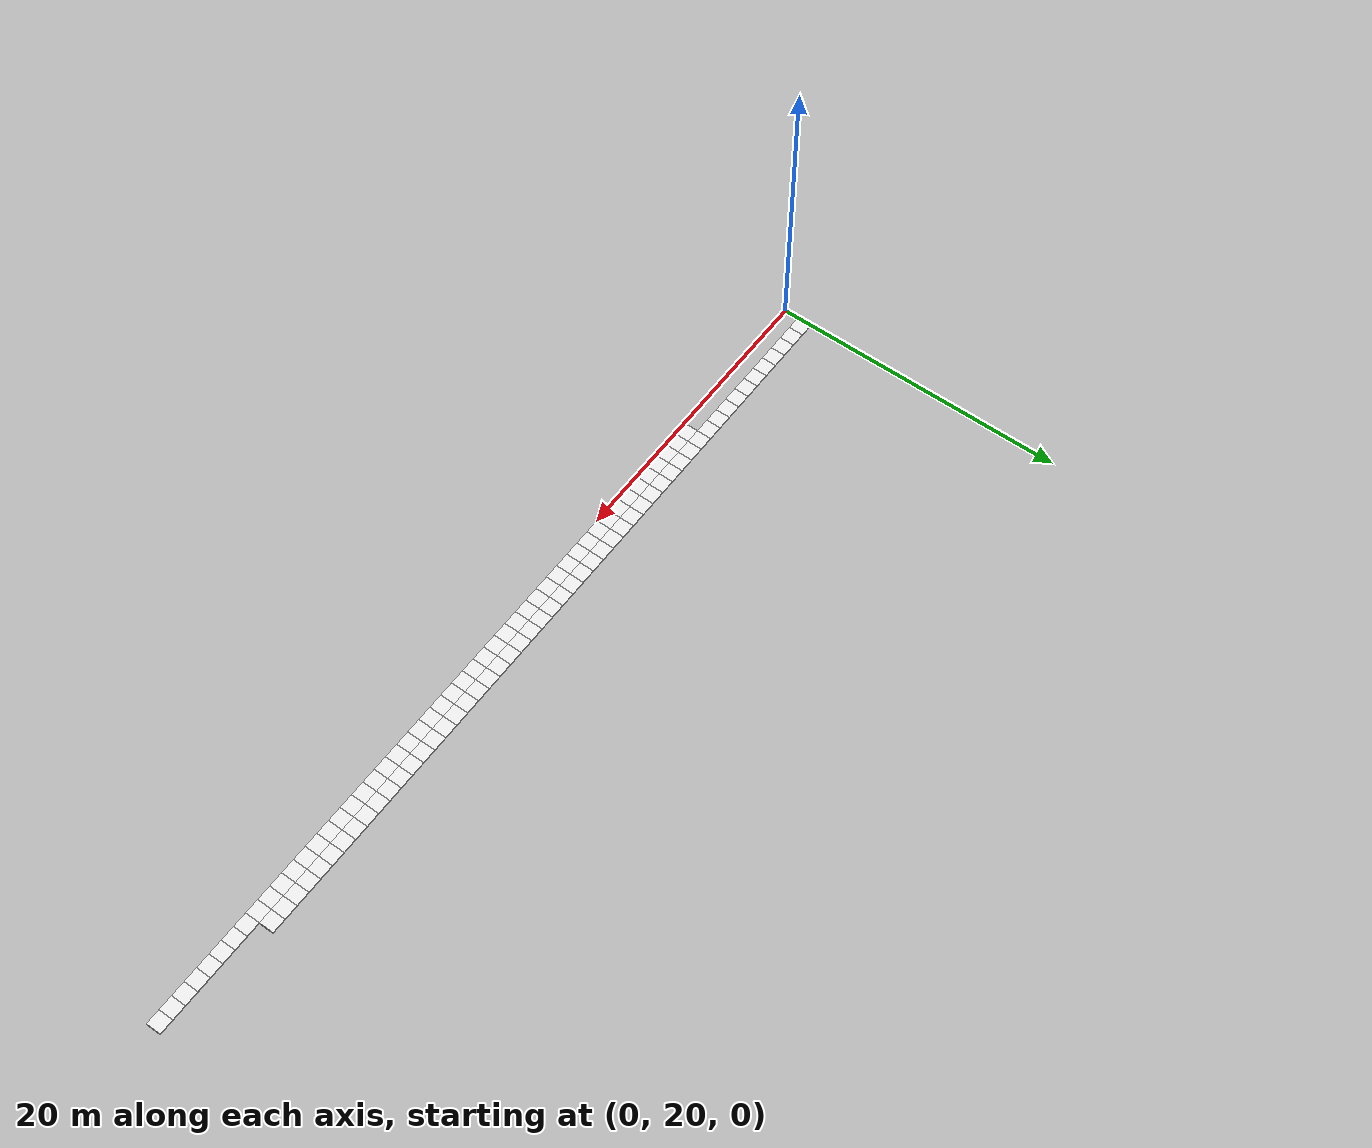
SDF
<sdf version="1.6">
 <world name="grid_world">
  <model name="cell_11_20">
   <static>true</static>
   <link name="link">
    <collision name="collision"><geometry><box><size>1 1 0.1</size></box></geometry></collision>
    <visual name="visual">
     <geometry><box><size>1 1 0.1</size></box></geometry>
     <material>
      <script><uri>file://media/materials/scripts/gazebo.material</uri><name>Gazebo/White</name></script>
     </material>
    </visual>
    <pose>11.5 20.5 0.05 0 0 0</pose>
   </link>
  </model>
  <model name="cell_12_20">
   <static>true</static>
   <link name="link">
    <collision name="collision"><geometry><box><size>1 1 0.1</size></box></geometry></collision>
    <visual name="visual">
     <geometry><box><size>1 1 0.1</size></box></geometry>
     <material>
      <script><uri>file://media/materials/scripts/gazebo.material</uri><name>Gazebo/White</name></script>
     </material>
    </visual>
    <pose>12.5 20.5 0.05 0 0 0</pose>
   </link>
  </model>
  <model name="cell_13_20">
   <static>true</static>
   <link name="link">
    <collision name="collision"><geometry><box><size>1 1 0.1</size></box></geometry></collision>
    <visual name="visual">
     <geometry><box><size>1 1 0.1</size></box></geometry>
     <material>
      <script><uri>file://media/materials/scripts/gazebo.material</uri><name>Gazebo/White</name></script>
     </material>
    </visual>
    <pose>13.5 20.5 0.05 0 0 0</pose>
   </link>
  </model>
  <model name="cell_14_20">
   <static>true</static>
   <link name="link">
    <collision name="collision"><geometry><box><size>1 1 0.1</size></box></geometry></collision>
    <visual name="visual">
     <geometry><box><size>1 1 0.1</size></box></geometry>
     <material>
      <script><uri>file://media/materials/scripts/gazebo.material</uri><name>Gazebo/White</name></script>
     </material>
    </visual>
    <pose>14.5 20.5 0.05 0 0 0</pose>
   </link>
  </model>
  <model name="cell_15_20">
   <static>true</static>
   <link name="link">
    <collision name="collision"><geometry><box><size>1 1 0.1</size></box></geometry></collision>
    <visual name="visual">
     <geometry><box><size>1 1 0.1</size></box></geometry>
     <material>
      <script><uri>file://media/materials/scripts/gazebo.material</uri><name>Gazebo/White</name></script>
     </material>
    </visual>
    <pose>15.5 20.5 0.05 0 0 0</pose>
   </link>
  </model>
  <model name="cell_16_20">
   <static>true</static>
   <link name="link">
    <collision name="collision"><geometry><box><size>1 1 0.1</size></box></geometry></collision>
    <visual name="visual">
     <geometry><box><size>1 1 0.1</size></box></geometry>
     <material>
      <script><uri>file://media/materials/scripts/gazebo.material</uri><name>Gazebo/White</name></script>
     </material>
    </visual>
    <pose>16.5 20.5 0.05 0 0 0</pose>
   </link>
  </model>
  <model name="cell_17_20">
   <static>true</static>
   <link name="link">
    <collision name="collision"><geometry><box><size>1 1 0.1</size></box></geometry></collision>
    <visual name="visual">
     <geometry><box><size>1 1 0.1</size></box></geometry>
     <material>
      <script><uri>file://media/materials/scripts/gazebo.material</uri><name>Gazebo/White</name></script>
     </material>
    </visual>
    <pose>17.5 20.5 0.05 0 0 0</pose>
   </link>
  </model>
  <model name="cell_18_20">
   <static>true</static>
   <link name="link">
    <collision name="collision"><geometry><box><size>1 1 0.1</size></box></geometry></collision>
    <visual name="visual">
     <geometry><box><size>1 1 0.1</size></box></geometry>
     <material>
      <script><uri>file://media/materials/scripts/gazebo.material</uri><name>Gazebo/White</name></script>
     </material>
    </visual>
    <pose>18.5 20.5 0.05 0 0 0</pose>
   </link>
  </model>
  <model name="cell_19_20">
   <static>true</static>
   <link name="link">
    <collision name="collision"><geometry><box><size>1 1 0.1</size></box></geometry></collision>
    <visual name="visual">
     <geometry><box><size>1 1 0.1</size></box></geometry>
     <material>
      <script><uri>file://media/materials/scripts/gazebo.material</uri><name>Gazebo/White</name></script>
     </material>
    </visual>
    <pose>19.5 20.5 0.05 0 0 0</pose>
   </link>
  </model>
  <model name="cell_20_20">
   <static>true</static>
   <link name="link">
    <collision name="collision"><geometry><box><size>1 1 0.1</size></box></geometry></collision>
    <visual name="visual">
     <geometry><box><size>1 1 0.1</size></box></geometry>
     <material>
      <script><uri>file://media/materials/scripts/gazebo.material</uri><name>Gazebo/White</name></script>
     </material>
    </visual>
    <pose>20.5 20.5 0.05 0 0 0</pose>
   </link>
  </model>
  <model name="cell_21_20">
   <static>true</static>
   <link name="link">
    <collision name="collision"><geometry><box><size>1 1 0.1</size></box></geometry></collision>
    <visual name="visual">
     <geometry><box><size>1 1 0.1</size></box></geometry>
     <material>
      <script><uri>file://media/materials/scripts/gazebo.material</uri><name>Gazebo/White</name></script>
     </material>
    </visual>
    <pose>21.5 20.5 0.05 0 0 0</pose>
   </link>
  </model>
  <model name="cell_22_20">
   <static>true</static>
   <link name="link">
    <collision name="collision"><geometry><box><size>1 1 0.1</size></box></geometry></collision>
    <visual name="visual">
     <geometry><box><size>1 1 0.1</size></box></geometry>
     <material>
      <script><uri>file://media/materials/scripts/gazebo.material</uri><name>Gazebo/White</name></script>
     </material>
    </visual>
    <pose>22.5 20.5 0.05 0 0 0</pose>
   </link>
  </model>
  <model name="cell_23_20">
   <static>true</static>
   <link name="link">
    <collision name="collision"><geometry><box><size>1 1 0.1</size></box></geometry></collision>
    <visual name="visual">
     <geometry><box><size>1 1 0.1</size></box></geometry>
     <material>
      <script><uri>file://media/materials/scripts/gazebo.material</uri><name>Gazebo/White</name></script>
     </material>
    </visual>
    <pose>23.5 20.5 0.05 0 0 0</pose>
   </link>
  </model>
  <model name="cell_24_20">
   <static>true</static>
   <link name="link">
    <collision name="collision"><geometry><box><size>1 1 0.1</size></box></geometry></collision>
    <visual name="visual">
     <geometry><box><size>1 1 0.1</size></box></geometry>
     <material>
      <script><uri>file://media/materials/scripts/gazebo.material</uri><name>Gazebo/White</name></script>
     </material>
    </visual>
    <pose>24.5 20.5 0.05 0 0 0</pose>
   </link>
  </model>
  <model name="cell_25_20">
   <static>true</static>
   <link name="link">
    <collision name="collision"><geometry><box><size>1 1 0.1</size></box></geometry></collision>
    <visual name="visual">
     <geometry><box><size>1 1 0.1</size></box></geometry>
     <material>
      <script><uri>file://media/materials/scripts/gazebo.material</uri><name>Gazebo/White</name></script>
     </material>
    </visual>
    <pose>25.5 20.5 0.05 0 0 0</pose>
   </link>
  </model>
  <model name="cell_26_20">
   <static>true</static>
   <link name="link">
    <collision name="collision"><geometry><box><size>1 1 0.1</size></box></geometry></collision>
    <visual name="visual">
     <geometry><box><size>1 1 0.1</size></box></geometry>
     <material>
      <script><uri>file://media/materials/scripts/gazebo.material</uri><name>Gazebo/White</name></script>
     </material>
    </visual>
    <pose>26.5 20.5 0.05 0 0 0</pose>
   </link>
  </model>
  <model name="cell_27_20">
   <static>true</static>
   <link name="link">
    <collision name="collision"><geometry><box><size>1 1 0.1</size></box></geometry></collision>
    <visual name="visual">
     <geometry><box><size>1 1 0.1</size></box></geometry>
     <material>
      <script><uri>file://media/materials/scripts/gazebo.material</uri><name>Gazebo/White</name></script>
     </material>
    </visual>
    <pose>27.5 20.5 0.05 0 0 0</pose>
   </link>
  </model>
  <model name="cell_28_20">
   <static>true</static>
   <link name="link">
    <collision name="collision"><geometry><box><size>1 1 0.1</size></box></geometry></collision>
    <visual name="visual">
     <geometry><box><size>1 1 0.1</size></box></geometry>
     <material>
      <script><uri>file://media/materials/scripts/gazebo.material</uri><name>Gazebo/White</name></script>
     </material>
    </visual>
    <pose>28.5 20.5 0.05 0 0 0</pose>
   </link>
  </model>
  <model name="cell_29_20">
   <static>true</static>
   <link name="link">
    <collision name="collision"><geometry><box><size>1 1 0.1</size></box></geometry></collision>
    <visual name="visual">
     <geometry><box><size>1 1 0.1</size></box></geometry>
     <material>
      <script><uri>file://media/materials/scripts/gazebo.material</uri><name>Gazebo/White</name></script>
     </material>
    </visual>
    <pose>29.5 20.5 0.05 0 0 0</pose>
   </link>
  </model>
  <model name="cell_30_20">
   <static>true</static>
   <link name="link">
    <collision name="collision"><geometry><box><size>1 1 0.1</size></box></geometry></collision>
    <visual name="visual">
     <geometry><box><size>1 1 0.1</size></box></geometry>
     <material>
      <script><uri>file://media/materials/scripts/gazebo.material</uri><name>Gazebo/White</name></script>
     </material>
    </visual>
    <pose>30.5 20.5 0.05 0 0 0</pose>
   </link>
  </model>
  <model name="cell_31_20">
   <static>true</static>
   <link name="link">
    <collision name="collision"><geometry><box><size>1 1 0.1</size></box></geometry></collision>
    <visual name="visual">
     <geometry><box><size>1 1 0.1</size></box></geometry>
     <material>
      <script><uri>file://media/materials/scripts/gazebo.material</uri><name>Gazebo/White</name></script>
     </material>
    </visual>
    <pose>31.5 20.5 0.05 0 0 0</pose>
   </link>
  </model>
  <model name="cell_32_20">
   <static>true</static>
   <link name="link">
    <collision name="collision"><geometry><box><size>1 1 0.1</size></box></geometry></collision>
    <visual name="visual">
     <geometry><box><size>1 1 0.1</size></box></geometry>
     <material>
      <script><uri>file://media/materials/scripts/gazebo.material</uri><name>Gazebo/White</name></script>
     </material>
    </visual>
    <pose>32.5 20.5 0.05 0 0 0</pose>
   </link>
  </model>
  <model name="cell_33_20">
   <static>true</static>
   <link name="link">
    <collision name="collision"><geometry><box><size>1 1 0.1</size></box></geometry></collision>
    <visual name="visual">
     <geometry><box><size>1 1 0.1</size></box></geometry>
     <material>
      <script><uri>file://media/materials/scripts/gazebo.material</uri><name>Gazebo/White</name></script>
     </material>
    </visual>
    <pose>33.5 20.5 0.05 0 0 0</pose>
   </link>
  </model>
  <model name="cell_34_20">
   <static>true</static>
   <link name="link">
    <collision name="collision"><geometry><box><size>1 1 0.1</size></box></geometry></collision>
    <visual name="visual">
     <geometry><box><size>1 1 0.1</size></box></geometry>
     <material>
      <script><uri>file://media/materials/scripts/gazebo.material</uri><name>Gazebo/White</name></script>
     </material>
    </visual>
    <pose>34.5 20.5 0.05 0 0 0</pose>
   </link>
  </model>
  <model name="cell_35_20">
   <static>true</static>
   <link name="link">
    <collision name="collision"><geometry><box><size>1 1 0.1</size></box></geometry></collision>
    <visual name="visual">
     <geometry><box><size>1 1 0.1</size></box></geometry>
     <material>
      <script><uri>file://media/materials/scripts/gazebo.material</uri><name>Gazebo/White</name></script>
     </material>
    </visual>
    <pose>35.5 20.5 0.05 0 0 0</pose>
   </link>
  </model>
  <model name="cell_36_20">
   <static>true</static>
   <link name="link">
    <collision name="collision"><geometry><box><size>1 1 0.1</size></box></geometry></collision>
    <visual name="visual">
     <geometry><box><size>1 1 0.1</size></box></geometry>
     <material>
      <script><uri>file://media/materials/scripts/gazebo.material</uri><name>Gazebo/White</name></script>
     </material>
    </visual>
    <pose>36.5 20.5 0.05 0 0 0</pose>
   </link>
  </model>
  <model name="cell_37_20">
   <static>true</static>
   <link name="link">
    <collision name="collision"><geometry><box><size>1 1 0.1</size></box></geometry></collision>
    <visual name="visual">
     <geometry><box><size>1 1 0.1</size></box></geometry>
     <material>
      <script><uri>file://media/materials/scripts/gazebo.material</uri><name>Gazebo/White</name></script>
     </material>
    </visual>
    <pose>37.5 20.5 0.05 0 0 0</pose>
   </link>
  </model>
  <model name="cell_38_20">
   <static>true</static>
   <link name="link">
    <collision name="collision"><geometry><box><size>1 1 0.1</size></box></geometry></collision>
    <visual name="visual">
     <geometry><box><size>1 1 0.1</size></box></geometry>
     <material>
      <script><uri>file://media/materials/scripts/gazebo.material</uri><name>Gazebo/White</name></script>
     </material>
    </visual>
    <pose>38.5 20.5 0.05 0 0 0</pose>
   </link>
  </model>
  <model name="cell_39_20">
   <static>true</static>
   <link name="link">
    <collision name="collision"><geometry><box><size>1 1 0.1</size></box></geometry></collision>
    <visual name="visual">
     <geometry><box><size>1 1 0.1</size></box></geometry>
     <material>
      <script><uri>file://media/materials/scripts/gazebo.material</uri><name>Gazebo/White</name></script>
     </material>
    </visual>
    <pose>39.5 20.5 0.05 0 0 0</pose>
   </link>
  </model>
  <model name="cell_40_20">
   <static>true</static>
   <link name="link">
    <collision name="collision"><geometry><box><size>1 1 0.1</size></box></geometry></collision>
    <visual name="visual">
     <geometry><box><size>1 1 0.1</size></box></geometry>
     <material>
      <script><uri>file://media/materials/scripts/gazebo.material</uri><name>Gazebo/White</name></script>
     </material>
    </visual>
    <pose>40.5 20.5 0.05 0 0 0</pose>
   </link>
  </model>
  <model name="cell_41_20">
   <static>true</static>
   <link name="link">
    <collision name="collision"><geometry><box><size>1 1 0.1</size></box></geometry></collision>
    <visual name="visual">
     <geometry><box><size>1 1 0.1</size></box></geometry>
     <material>
      <script><uri>file://media/materials/scripts/gazebo.material</uri><name>Gazebo/White</name></script>
     </material>
    </visual>
    <pose>41.5 20.5 0.05 0 0 0</pose>
   </link>
  </model>
  <model name="cell_42_20">
   <static>true</static>
   <link name="link">
    <collision name="collision"><geometry><box><size>1 1 0.1</size></box></geometry></collision>
    <visual name="visual">
     <geometry><box><size>1 1 0.1</size></box></geometry>
     <material>
      <script><uri>file://media/materials/scripts/gazebo.material</uri><name>Gazebo/White</name></script>
     </material>
    </visual>
    <pose>42.5 20.5 0.05 0 0 0</pose>
   </link>
  </model>
  <model name="cell_43_20">
   <static>true</static>
   <link name="link">
    <collision name="collision"><geometry><box><size>1 1 0.1</size></box></geometry></collision>
    <visual name="visual">
     <geometry><box><size>1 1 0.1</size></box></geometry>
     <material>
      <script><uri>file://media/materials/scripts/gazebo.material</uri><name>Gazebo/White</name></script>
     </material>
    </visual>
    <pose>43.5 20.5 0.05 0 0 0</pose>
   </link>
  </model>
  <model name="cell_44_20">
   <static>true</static>
   <link name="link">
    <collision name="collision"><geometry><box><size>1 1 0.1</size></box></geometry></collision>
    <visual name="visual">
     <geometry><box><size>1 1 0.1</size></box></geometry>
     <material>
      <script><uri>file://media/materials/scripts/gazebo.material</uri><name>Gazebo/White</name></script>
     </material>
    </visual>
    <pose>44.5 20.5 0.05 0 0 0</pose>
   </link>
  </model>
  <model name="cell_45_20">
   <static>true</static>
   <link name="link">
    <collision name="collision"><geometry><box><size>1 1 0.1</size></box></geometry></collision>
    <visual name="visual">
     <geometry><box><size>1 1 0.1</size></box></geometry>
     <material>
      <script><uri>file://media/materials/scripts/gazebo.material</uri><name>Gazebo/White</name></script>
     </material>
    </visual>
    <pose>45.5 20.5 0.05 0 0 0</pose>
   </link>
  </model>
  <model name="cell_46_20">
   <static>true</static>
   <link name="link">
    <collision name="collision"><geometry><box><size>1 1 0.1</size></box></geometry></collision>
    <visual name="visual">
     <geometry><box><size>1 1 0.1</size></box></geometry>
     <material>
      <script><uri>file://media/materials/scripts/gazebo.material</uri><name>Gazebo/White</name></script>
     </material>
    </visual>
    <pose>46.5 20.5 0.05 0 0 0</pose>
   </link>
  </model>
  <model name="cell_47_20">
   <static>true</static>
   <link name="link">
    <collision name="collision"><geometry><box><size>1 1 0.1</size></box></geometry></collision>
    <visual name="visual">
     <geometry><box><size>1 1 0.1</size></box></geometry>
     <material>
      <script><uri>file://media/materials/scripts/gazebo.material</uri><name>Gazebo/White</name></script>
     </material>
    </visual>
    <pose>47.5 20.5 0.05 0 0 0</pose>
   </link>
  </model>
  <model name="cell_48_20">
   <static>true</static>
   <link name="link">
    <collision name="collision"><geometry><box><size>1 1 0.1</size></box></geometry></collision>
    <visual name="visual">
     <geometry><box><size>1 1 0.1</size></box></geometry>
     <material>
      <script><uri>file://media/materials/scripts/gazebo.material</uri><name>Gazebo/White</name></script>
     </material>
    </visual>
    <pose>48.5 20.5 0.05 0 0 0</pose>
   </link>
  </model>
  <model name="cell_49_20">
   <static>true</static>
   <link name="link">
    <collision name="collision"><geometry><box><size>1 1 0.1</size></box></geometry></collision>
    <visual name="visual">
     <geometry><box><size>1 1 0.1</size></box></geometry>
     <material>
      <script><uri>file://media/materials/scripts/gazebo.material</uri><name>Gazebo/White</name></script>
     </material>
    </visual>
    <pose>49.5 20.5 0.05 0 0 0</pose>
   </link>
  </model>
  <model name="cell_50_20">
   <static>true</static>
   <link name="link">
    <collision name="collision"><geometry><box><size>1 1 0.1</size></box></geometry></collision>
    <visual name="visual">
     <geometry><box><size>1 1 0.1</size></box></geometry>
     <material>
      <script><uri>file://media/materials/scripts/gazebo.material</uri><name>Gazebo/White</name></script>
     </material>
    </visual>
    <pose>50.5 20.5 0.05 0 0 0</pose>
   </link>
  </model>
  <model name="cell_51_20">
   <static>true</static>
   <link name="link">
    <collision name="collision"><geometry><box><size>1 1 0.1</size></box></geometry></collision>
    <visual name="visual">
     <geometry><box><size>1 1 0.1</size></box></geometry>
     <material>
      <script><uri>file://media/materials/scripts/gazebo.material</uri><name>Gazebo/White</name></script>
     </material>
    </visual>
    <pose>51.5 20.5 0.05 0 0 0</pose>
   </link>
  </model>
  <model name="cell_52_20">
   <static>true</static>
   <link name="link">
    <collision name="collision"><geometry><box><size>1 1 0.1</size></box></geometry></collision>
    <visual name="visual">
     <geometry><box><size>1 1 0.1</size></box></geometry>
     <material>
      <script><uri>file://media/materials/scripts/gazebo.material</uri><name>Gazebo/White</name></script>
     </material>
    </visual>
    <pose>52.5 20.5 0.05 0 0 0</pose>
   </link>
  </model>
  <model name="cell_53_20">
   <static>true</static>
   <link name="link">
    <collision name="collision"><geometry><box><size>1 1 0.1</size></box></geometry></collision>
    <visual name="visual">
     <geometry><box><size>1 1 0.1</size></box></geometry>
     <material>
      <script><uri>file://media/materials/scripts/gazebo.material</uri><name>Gazebo/White</name></script>
     </material>
    </visual>
    <pose>53.5 20.5 0.05 0 0 0</pose>
   </link>
  </model>
  <model name="cell_54_20">
   <static>true</static>
   <link name="link">
    <collision name="collision"><geometry><box><size>1 1 0.1</size></box></geometry></collision>
    <visual name="visual">
     <geometry><box><size>1 1 0.1</size></box></geometry>
     <material>
      <script><uri>file://media/materials/scripts/gazebo.material</uri><name>Gazebo/White</name></script>
     </material>
    </visual>
    <pose>54.5 20.5 0.05 0 0 0</pose>
   </link>
  </model>
  <model name="cell_55_20">
   <static>true</static>
   <link name="link">
    <collision name="collision"><geometry><box><size>1 1 0.1</size></box></geometry></collision>
    <visual name="visual">
     <geometry><box><size>1 1 0.1</size></box></geometry>
     <material>
      <script><uri>file://media/materials/scripts/gazebo.material</uri><name>Gazebo/White</name></script>
     </material>
    </visual>
    <pose>55.5 20.5 0.05 0 0 0</pose>
   </link>
  </model>
  <model name="cell_56_20">
   <static>true</static>
   <link name="link">
    <collision name="collision"><geometry><box><size>1 1 0.1</size></box></geometry></collision>
    <visual name="visual">
     <geometry><box><size>1 1 0.1</size></box></geometry>
     <material>
      <script><uri>file://media/materials/scripts/gazebo.material</uri><name>Gazebo/White</name></script>
     </material>
    </visual>
    <pose>56.5 20.5 0.05 0 0 0</pose>
   </link>
  </model>
  <model name="cell_57_20">
   <static>true</static>
   <link name="link">
    <collision name="collision"><geometry><box><size>1 1 0.1</size></box></geometry></collision>
    <visual name="visual">
     <geometry><box><size>1 1 0.1</size></box></geometry>
     <material>
      <script><uri>file://media/materials/scripts/gazebo.material</uri><name>Gazebo/White</name></script>
     </material>
    </visual>
    <pose>57.5 20.5 0.05 0 0 0</pose>
   </link>
  </model>
  <model name="cell_58_20">
   <static>true</static>
   <link name="link">
    <collision name="collision"><geometry><box><size>1 1 0.1</size></box></geometry></collision>
    <visual name="visual">
     <geometry><box><size>1 1 0.1</size></box></geometry>
     <material>
      <script><uri>file://media/materials/scripts/gazebo.material</uri><name>Gazebo/White</name></script>
     </material>
    </visual>
    <pose>58.5 20.5 0.05 0 0 0</pose>
   </link>
  </model>
  <model name="cell_59_20">
   <static>true</static>
   <link name="link">
    <collision name="collision"><geometry><box><size>1 1 0.1</size></box></geometry></collision>
    <visual name="visual">
     <geometry><box><size>1 1 0.1</size></box></geometry>
     <material>
      <script><uri>file://media/materials/scripts/gazebo.material</uri><name>Gazebo/White</name></script>
     </material>
    </visual>
    <pose>59.5 20.5 0.05 0 0 0</pose>
   </link>
  </model>
  <model name="cell_0_21">
   <static>true</static>
   <link name="link">
    <collision name="collision"><geometry><box><size>1 1 0.1</size></box></geometry></collision>
    <visual name="visual">
     <geometry><box><size>1 1 0.1</size></box></geometry>
     <material>
      <script><uri>file://media/materials/scripts/gazebo.material</uri><name>Gazebo/White</name></script>
     </material>
    </visual>
    <pose>0.5 21.5 0.05 0 0 0</pose>
   </link>
  </model>
  <model name="cell_1_21">
   <static>true</static>
   <link name="link">
    <collision name="collision"><geometry><box><size>1 1 0.1</size></box></geometry></collision>
    <visual name="visual">
     <geometry><box><size>1 1 0.1</size></box></geometry>
     <material>
      <script><uri>file://media/materials/scripts/gazebo.material</uri><name>Gazebo/White</name></script>
     </material>
    </visual>
    <pose>1.5 21.5 0.05 0 0 0</pose>
   </link>
  </model>
  <model name="cell_2_21">
   <static>true</static>
   <link name="link">
    <collision name="collision"><geometry><box><size>1 1 0.1</size></box></geometry></collision>
    <visual name="visual">
     <geometry><box><size>1 1 0.1</size></box></geometry>
     <material>
      <script><uri>file://media/materials/scripts/gazebo.material</uri><name>Gazebo/White</name></script>
     </material>
    </visual>
    <pose>2.5 21.5 0.05 0 0 0</pose>
   </link>
  </model>
  <model name="cell_3_21">
   <static>true</static>
   <link name="link">
    <collision name="collision"><geometry><box><size>1 1 0.1</size></box></geometry></collision>
    <visual name="visual">
     <geometry><box><size>1 1 0.1</size></box></geometry>
     <material>
      <script><uri>file://media/materials/scripts/gazebo.material</uri><name>Gazebo/White</name></script>
     </material>
    </visual>
    <pose>3.5 21.5 0.05 0 0 0</pose>
   </link>
  </model>
  <model name="cell_4_21">
   <static>true</static>
   <link name="link">
    <collision name="collision"><geometry><box><size>1 1 0.1</size></box></geometry></collision>
    <visual name="visual">
     <geometry><box><size>1 1 0.1</size></box></geometry>
     <material>
      <script><uri>file://media/materials/scripts/gazebo.material</uri><name>Gazebo/White</name></script>
     </material>
    </visual>
    <pose>4.5 21.5 0.05 0 0 0</pose>
   </link>
  </model>
  <model name="cell_5_21">
   <static>true</static>
   <link name="link">
    <collision name="collision"><geometry><box><size>1 1 0.1</size></box></geometry></collision>
    <visual name="visual">
     <geometry><box><size>1 1 0.1</size></box></geometry>
     <material>
      <script><uri>file://media/materials/scripts/gazebo.material</uri><name>Gazebo/White</name></script>
     </material>
    </visual>
    <pose>5.5 21.5 0.05 0 0 0</pose>
   </link>
  </model>
  <model name="cell_6_21">
   <static>true</static>
   <link name="link">
    <collision name="collision"><geometry><box><size>1 1 0.1</size></box></geometry></collision>
    <visual name="visual">
     <geometry><box><size>1 1 0.1</size></box></geometry>
     <material>
      <script><uri>file://media/materials/scripts/gazebo.material</uri><name>Gazebo/White</name></script>
     </material>
    </visual>
    <pose>6.5 21.5 0.05 0 0 0</pose>
   </link>
  </model>
  <model name="cell_7_21">
   <static>true</static>
   <link name="link">
    <collision name="collision"><geometry><box><size>1 1 0.1</size></box></geometry></collision>
    <visual name="visual">
     <geometry><box><size>1 1 0.1</size></box></geometry>
     <material>
      <script><uri>file://media/materials/scripts/gazebo.material</uri><name>Gazebo/White</name></script>
     </material>
    </visual>
    <pose>7.5 21.5 0.05 0 0 0</pose>
   </link>
  </model>
  <model name="cell_8_21">
   <static>true</static>
   <link name="link">
    <collision name="collision"><geometry><box><size>1 1 0.1</size></box></geometry></collision>
    <visual name="visual">
     <geometry><box><size>1 1 0.1</size></box></geometry>
     <material>
      <script><uri>file://media/materials/scripts/gazebo.material</uri><name>Gazebo/White</name></script>
     </material>
    </visual>
    <pose>8.5 21.5 0.05 0 0 0</pose>
   </link>
  </model>
  <model name="cell_9_21">
   <static>true</static>
   <link name="link">
    <collision name="collision"><geometry><box><size>1 1 0.1</size></box></geometry></collision>
    <visual name="visual">
     <geometry><box><size>1 1 0.1</size></box></geometry>
     <material>
      <script><uri>file://media/materials/scripts/gazebo.material</uri><name>Gazebo/White</name></script>
     </material>
    </visual>
    <pose>9.5 21.5 0.05 0 0 0</pose>
   </link>
  </model>
  <model name="cell_10_21">
   <static>true</static>
   <link name="link">
    <collision name="collision"><geometry><box><size>1 1 0.1</size></box></geometry></collision>
    <visual name="visual">
     <geometry><box><size>1 1 0.1</size></box></geometry>
     <material>
      <script><uri>file://media/materials/scripts/gazebo.material</uri><name>Gazebo/White</name></script>
     </material>
    </visual>
    <pose>10.5 21.5 0.05 0 0 0</pose>
   </link>
  </model>
  <model name="cell_11_21">
   <static>true</static>
   <link name="link">
    <collision name="collision"><geometry><box><size>1 1 0.1</size></box></geometry></collision>
    <visual name="visual">
     <geometry><box><size>1 1 0.1</size></box></geometry>
     <material>
      <script><uri>file://media/materials/scripts/gazebo.material</uri><name>Gazebo/White</name></script>
     </material>
    </visual>
    <pose>11.5 21.5 0.05 0 0 0</pose>
   </link>
  </model>
  <model name="cell_12_21">
   <static>true</static>
   <link name="link">
    <collision name="collision"><geometry><box><size>1 1 0.1</size></box></geometry></collision>
    <visual name="visual">
     <geometry><box><size>1 1 0.1</size></box></geometry>
     <material>
      <script><uri>file://media/materials/scripts/gazebo.material</uri><name>Gazebo/White</name></script>
     </material>
    </visual>
    <pose>12.5 21.5 0.05 0 0 0</pose>
   </link>
  </model>
  <model name="cell_13_21">
   <static>true</static>
   <link name="link">
    <collision name="collision"><geometry><box><size>1 1 0.1</size></box></geometry></collision>
    <visual name="visual">
     <geometry><box><size>1 1 0.1</size></box></geometry>
     <material>
      <script><uri>file://media/materials/scripts/gazebo.material</uri><name>Gazebo/White</name></script>
     </material>
    </visual>
    <pose>13.5 21.5 0.05 0 0 0</pose>
   </link>
  </model>
  <model name="cell_14_21">
   <static>true</static>
   <link name="link">
    <collision name="collision"><geometry><box><size>1 1 0.1</size></box></geometry></collision>
    <visual name="visual">
     <geometry><box><size>1 1 0.1</size></box></geometry>
     <material>
      <script><uri>file://media/materials/scripts/gazebo.material</uri><name>Gazebo/White</name></script>
     </material>
    </visual>
    <pose>14.5 21.5 0.05 0 0 0</pose>
   </link>
  </model>
  <model name="cell_15_21">
   <static>true</static>
   <link name="link">
    <collision name="collision"><geometry><box><size>1 1 0.1</size></box></geometry></collision>
    <visual name="visual">
     <geometry><box><size>1 1 0.1</size></box></geometry>
     <material>
      <script><uri>file://media/materials/scripts/gazebo.material</uri><name>Gazebo/White</name></script>
     </material>
    </visual>
    <pose>15.5 21.5 0.05 0 0 0</pose>
   </link>
  </model>
  <model name="cell_16_21">
   <static>true</static>
   <link name="link">
    <collision name="collision"><geometry><box><size>1 1 0.1</size></box></geometry></collision>
    <visual name="visual">
     <geometry><box><size>1 1 0.1</size></box></geometry>
     <material>
      <script><uri>file://media/materials/scripts/gazebo.material</uri><name>Gazebo/White</name></script>
     </material>
    </visual>
    <pose>16.5 21.5 0.05 0 0 0</pose>
   </link>
  </model>
  <model name="cell_17_21">
   <static>true</static>
   <link name="link">
    <collision name="collision"><geometry><box><size>1 1 0.1</size></box></geometry></collision>
    <visual name="visual">
     <geometry><box><size>1 1 0.1</size></box></geometry>
     <material>
      <script><uri>file://media/materials/scripts/gazebo.material</uri><name>Gazebo/White</name></script>
     </material>
    </visual>
    <pose>17.5 21.5 0.05 0 0 0</pose>
   </link>
  </model>
  <model name="cell_18_21">
   <static>true</static>
   <link name="link">
    <collision name="collision"><geometry><box><size>1 1 0.1</size></box></geometry></collision>
    <visual name="visual">
     <geometry><box><size>1 1 0.1</size></box></geometry>
     <material>
      <script><uri>file://media/materials/scripts/gazebo.material</uri><name>Gazebo/White</name></script>
     </material>
    </visual>
    <pose>18.5 21.5 0.05 0 0 0</pose>
   </link>
  </model>
  <model name="cell_19_21">
   <static>true</static>
   <link name="link">
    <collision name="collision"><geometry><box><size>1 1 0.1</size></box></geometry></collision>
    <visual name="visual">
     <geometry><box><size>1 1 0.1</size></box></geometry>
     <material>
      <script><uri>file://media/materials/scripts/gazebo.material</uri><name>Gazebo/White</name></script>
     </material>
    </visual>
    <pose>19.5 21.5 0.05 0 0 0</pose>
   </link>
  </model>
  <model name="cell_20_21">
   <static>true</static>
   <link name="link">
    <collision name="collision"><geometry><box><size>1 1 0.1</size></box></geometry></collision>
    <visual name="visual">
     <geometry><box><size>1 1 0.1</size></box></geometry>
     <material>
      <script><uri>file://media/materials/scripts/gazebo.material</uri><name>Gazebo/White</name></script>
     </material>
    </visual>
    <pose>20.5 21.5 0.05 0 0 0</pose>
   </link>
  </model>
  <model name="cell_21_21">
   <static>true</static>
   <link name="link">
    <collision name="collision"><geometry><box><size>1 1 0.1</size></box></geometry></collision>
    <visual name="visual">
     <geometry><box><size>1 1 0.1</size></box></geometry>
     <material>
      <script><uri>file://media/materials/scripts/gazebo.material</uri><name>Gazebo/White</name></script>
     </material>
    </visual>
    <pose>21.5 21.5 0.05 0 0 0</pose>
   </link>
  </model>
  <model name="cell_22_21">
   <static>true</static>
   <link name="link">
    <collision name="collision"><geometry><box><size>1 1 0.1</size></box></geometry></collision>
    <visual name="visual">
     <geometry><box><size>1 1 0.1</size></box></geometry>
     <material>
      <script><uri>file://media/materials/scripts/gazebo.material</uri><name>Gazebo/White</name></script>
     </material>
    </visual>
    <pose>22.5 21.5 0.05 0 0 0</pose>
   </link>
  </model>
  <model name="cell_23_21">
   <static>true</static>
   <link name="link">
    <collision name="collision"><geometry><box><size>1 1 0.1</size></box></geometry></collision>
    <visual name="visual">
     <geometry><box><size>1 1 0.1</size></box></geometry>
     <material>
      <script><uri>file://media/materials/scripts/gazebo.material</uri><name>Gazebo/White</name></script>
     </material>
    </visual>
    <pose>23.5 21.5 0.05 0 0 0</pose>
   </link>
  </model>
  <model name="cell_24_21">
   <static>true</static>
   <link name="link">
    <collision name="collision"><geometry><box><size>1 1 0.1</size></box></geometry></collision>
    <visual name="visual">
     <geometry><box><size>1 1 0.1</size></box></geometry>
     <material>
      <script><uri>file://media/materials/scripts/gazebo.material</uri><name>Gazebo/White</name></script>
     </material>
    </visual>
    <pose>24.5 21.5 0.05 0 0 0</pose>
   </link>
  </model>
  <model name="cell_25_21">
   <static>true</static>
   <link name="link">
    <collision name="collision"><geometry><box><size>1 1 0.1</size></box></geometry></collision>
    <visual name="visual">
     <geometry><box><size>1 1 0.1</size></box></geometry>
     <material>
      <script><uri>file://media/materials/scripts/gazebo.material</uri><name>Gazebo/White</name></script>
     </material>
    </visual>
    <pose>25.5 21.5 0.05 0 0 0</pose>
   </link>
  </model>
  <model name="cell_26_21">
   <static>true</static>
   <link name="link">
    <collision name="collision"><geometry><box><size>1 1 0.1</size></box></geometry></collision>
    <visual name="visual">
     <geometry><box><size>1 1 0.1</size></box></geometry>
     <material>
      <script><uri>file://media/materials/scripts/gazebo.material</uri><name>Gazebo/White</name></script>
     </material>
    </visual>
    <pose>26.5 21.5 0.05 0 0 0</pose>
   </link>
  </model>
  <model name="cell_27_21">
   <static>true</static>
   <link name="link">
    <collision name="collision"><geometry><box><size>1 1 0.1</size></box></geometry></collision>
    <visual name="visual">
     <geometry><box><size>1 1 0.1</size></box></geometry>
     <material>
      <script><uri>file://media/materials/scripts/gazebo.material</uri><name>Gazebo/White</name></script>
     </material>
    </visual>
    <pose>27.5 21.5 0.05 0 0 0</pose>
   </link>
  </model>
  <model name="cell_28_21">
   <static>true</static>
   <link name="link">
    <collision name="collision"><geometry><box><size>1 1 0.1</size></box></geometry></collision>
    <visual name="visual">
     <geometry><box><size>1 1 0.1</size></box></geometry>
     <material>
      <script><uri>file://media/materials/scripts/gazebo.material</uri><name>Gazebo/White</name></script>
     </material>
    </visual>
    <pose>28.5 21.5 0.05 0 0 0</pose>
   </link>
  </model>
  <model name="cell_29_21">
   <static>true</static>
   <link name="link">
    <collision name="collision"><geometry><box><size>1 1 0.1</size></box></geometry></collision>
    <visual name="visual">
     <geometry><box><size>1 1 0.1</size></box></geometry>
     <material>
      <script><uri>file://media/materials/scripts/gazebo.material</uri><name>Gazebo/White</name></script>
     </material>
    </visual>
    <pose>29.5 21.5 0.05 0 0 0</pose>
   </link>
  </model>
  <model name="cell_30_21">
   <static>true</static>
   <link name="link">
    <collision name="collision"><geometry><box><size>1 1 0.1</size></box></geometry></collision>
    <visual name="visual">
     <geometry><box><size>1 1 0.1</size></box></geometry>
     <material>
      <script><uri>file://media/materials/scripts/gazebo.material</uri><name>Gazebo/White</name></script>
     </material>
    </visual>
    <pose>30.5 21.5 0.05 0 0 0</pose>
   </link>
  </model>
  <model name="cell_31_21">
   <static>true</static>
   <link name="link">
    <collision name="collision"><geometry><box><size>1 1 0.1</size></box></geometry></collision>
    <visual name="visual">
     <geometry><box><size>1 1 0.1</size></box></geometry>
     <material>
      <script><uri>file://media/materials/scripts/gazebo.material</uri><name>Gazebo/White</name></script>
     </material>
    </visual>
    <pose>31.5 21.5 0.05 0 0 0</pose>
   </link>
  </model>
  <model name="cell_32_21">
   <static>true</static>
   <link name="link">
    <collision name="collision"><geometry><box><size>1 1 0.1</size></box></geometry></collision>
    <visual name="visual">
     <geometry><box><size>1 1 0.1</size></box></geometry>
     <material>
      <script><uri>file://media/materials/scripts/gazebo.material</uri><name>Gazebo/White</name></script>
     </material>
    </visual>
    <pose>32.5 21.5 0.05 0 0 0</pose>
   </link>
  </model>
  <model name="cell_33_21">
   <static>true</static>
   <link name="link">
    <collision name="collision"><geometry><box><size>1 1 0.1</size></box></geometry></collision>
    <visual name="visual">
     <geometry><box><size>1 1 0.1</size></box></geometry>
     <material>
      <script><uri>file://media/materials/scripts/gazebo.material</uri><name>Gazebo/White</name></script>
     </material>
    </visual>
    <pose>33.5 21.5 0.05 0 0 0</pose>
   </link>
  </model>
  <model name="cell_34_21">
   <static>true</static>
   <link name="link">
    <collision name="collision"><geometry><box><size>1 1 0.1</size></box></geometry></collision>
    <visual name="visual">
     <geometry><box><size>1 1 0.1</size></box></geometry>
     <material>
      <script><uri>file://media/materials/scripts/gazebo.material</uri><name>Gazebo/White</name></script>
     </material>
    </visual>
    <pose>34.5 21.5 0.05 0 0 0</pose>
   </link>
  </model>
  <model name="cell_35_21">
   <static>true</static>
   <link name="link">
    <collision name="collision"><geometry><box><size>1 1 0.1</size></box></geometry></collision>
    <visual name="visual">
     <geometry><box><size>1 1 0.1</size></box></geometry>
     <material>
      <script><uri>file://media/materials/scripts/gazebo.material</uri><name>Gazebo/White</name></script>
     </material>
    </visual>
    <pose>35.5 21.5 0.05 0 0 0</pose>
   </link>
  </model>
  <model name="cell_36_21">
   <static>true</static>
   <link name="link">
    <collision name="collision"><geometry><box><size>1 1 0.1</size></box></geometry></collision>
    <visual name="visual">
     <geometry><box><size>1 1 0.1</size></box></geometry>
     <material>
      <script><uri>file://media/materials/scripts/gazebo.material</uri><name>Gazebo/White</name></script>
     </material>
    </visual>
    <pose>36.5 21.5 0.05 0 0 0</pose>
   </link>
  </model>
  <model name="cell_37_21">
   <static>true</static>
   <link name="link">
    <collision name="collision"><geometry><box><size>1 1 0.1</size></box></geometry></collision>
    <visual name="visual">
     <geometry><box><size>1 1 0.1</size></box></geometry>
     <material>
      <script><uri>file://media/materials/scripts/gazebo.material</uri><name>Gazebo/White</name></script>
     </material>
    </visual>
    <pose>37.5 21.5 0.05 0 0 0</pose>
   </link>
  </model>
  <model name="cell_38_21">
   <static>true</static>
   <link name="link">
    <collision name="collision"><geometry><box><size>1 1 0.1</size></box></geometry></collision>
    <visual name="visual">
     <geometry><box><size>1 1 0.1</size></box></geometry>
     <material>
      <script><uri>file://media/materials/scripts/gazebo.material</uri><name>Gazebo/White</name></script>
     </material>
    </visual>
    <pose>38.5 21.5 0.05 0 0 0</pose>
   </link>
  </model>
  <model name="cell_39_21">
   <static>true</static>
   <link name="link">
    <collision name="collision"><geometry><box><size>1 1 0.1</size></box></geometry></collision>
    <visual name="visual">
     <geometry><box><size>1 1 0.1</size></box></geometry>
     <material>
      <script><uri>file://media/materials/scripts/gazebo.material</uri><name>Gazebo/White</name></script>
     </material>
    </visual>
    <pose>39.5 21.5 0.05 0 0 0</pose>
   </link>
  </model>
  <model name="cell_40_21">
   <static>true</static>
   <link name="link">
    <collision name="collision"><geometry><box><size>1 1 0.1</size></box></geometry></collision>
    <visual name="visual">
     <geometry><box><size>1 1 0.1</size></box></geometry>
     <material>
      <script><uri>file://media/materials/scripts/gazebo.material</uri><name>Gazebo/White</name></script>
     </material>
    </visual>
    <pose>40.5 21.5 0.05 0 0 0</pose>
   </link>
  </model>
  <model name="cell_41_21">
   <static>true</static>
   <link name="link">
    <collision name="collision"><geometry><box><size>1 1 0.1</size></box></geometry></collision>
    <visual name="visual">
     <geometry><box><size>1 1 0.1</size></box></geometry>
     <material>
      <script><uri>file://media/materials/scripts/gazebo.material</uri><name>Gazebo/White</name></script>
     </material>
    </visual>
    <pose>41.5 21.5 0.05 0 0 0</pose>
   </link>
  </model>
  <model name="cell_42_21">
   <static>true</static>
   <link name="link">
    <collision name="collision"><geometry><box><size>1 1 0.1</size></box></geometry></collision>
    <visual name="visual">
     <geometry><box><size>1 1 0.1</size></box></geometry>
     <material>
      <script><uri>file://media/materials/scripts/gazebo.material</uri><name>Gazebo/White</name></script>
     </material>
    </visual>
    <pose>42.5 21.5 0.05 0 0 0</pose>
   </link>
  </model>
  <model name="cell_43_21">
   <static>true</static>
   <link name="link">
    <collision name="collision"><geometry><box><size>1 1 0.1</size></box></geometry></collision>
    <visual name="visual">
     <geometry><box><size>1 1 0.1</size></box></geometry>
     <material>
      <script><uri>file://media/materials/scripts/gazebo.material</uri><name>Gazebo/White</name></script>
     </material>
    </visual>
    <pose>43.5 21.5 0.05 0 0 0</pose>
   </link>
  </model>
  <model name="cell_44_21">
   <static>true</static>
   <link name="link">
    <collision name="collision"><geometry><box><size>1 1 0.1</size></box></geometry></collision>
    <visual name="visual">
     <geometry><box><size>1 1 0.1</size></box></geometry>
     <material>
      <script><uri>file://media/materials/scripts/gazebo.material</uri><name>Gazebo/White</name></script>
     </material>
    </visual>
    <pose>44.5 21.5 0.05 0 0 0</pose>
   </link>
  </model>
  <model name="cell_45_21">
   <static>true</static>
   <link name="link">
    <collision name="collision"><geometry><box><size>1 1 0.1</size></box></geometry></collision>
    <visual name="visual">
     <geometry><box><size>1 1 0.1</size></box></geometry>
     <material>
      <script><uri>file://media/materials/scripts/gazebo.material</uri><name>Gazebo/White</name></script>
     </material>
    </visual>
    <pose>45.5 21.5 0.05 0 0 0</pose>
   </link>
  </model>
  <model name="cell_46_21">
   <static>true</static>
   <link name="link">
    <collision name="collision"><geometry><box><size>1 1 0.1</size></box></geometry></collision>
    <visual name="visual">
     <geometry><box><size>1 1 0.1</size></box></geometry>
     <material>
      <script><uri>file://media/materials/scripts/gazebo.material</uri><name>Gazebo/White</name></script>
     </material>
    </visual>
    <pose>46.5 21.5 0.05 0 0 0</pose>
   </link>
  </model>
  <model name="cell_47_21">
   <static>true</static>
   <link name="link">
    <collision name="collision"><geometry><box><size>1 1 0.1</size></box></geometry></collision>
    <visual name="visual">
     <geometry><box><size>1 1 0.1</size></box></geometry>
     <material>
      <script><uri>file://media/materials/scripts/gazebo.material</uri><name>Gazebo/White</name></script>
     </material>
    </visual>
    <pose>47.5 21.5 0.05 0 0 0</pose>
   </link>
  </model>
  <model name="cell_48_21">
   <static>true</static>
   <link name="link">
    <collision name="collision"><geometry><box><size>1 1 0.1</size></box></geometry></collision>
    <visual name="visual">
     <geometry><box><size>1 1 0.1</size></box></geometry>
     <material>
      <script><uri>file://media/materials/scripts/gazebo.material</uri><name>Gazebo/White</name></script>
     </material>
    </visual>
    <pose>48.5 21.5 0.05 0 0 0</pose>
   </link>
  </model>
  <model name="cell_49_21">
   <static>true</static>
   <link name="link">
    <collision name="collision"><geometry><box><size>1 1 0.1</size></box></geometry></collision>
    <visual name="visual">
     <geometry><box><size>1 1 0.1</size></box></geometry>
     <material>
      <script><uri>file://media/materials/scripts/gazebo.material</uri><name>Gazebo/White</name></script>
     </material>
    </visual>
    <pose>49.5 21.5 0.05 0 0 0</pose>
   </link>
  </model>
  <model name="cell_50_21">
   <static>true</static>
   <link name="link">
    <collision name="collision"><geometry><box><size>1 1 0.1</size></box></geometry></collision>
    <visual name="visual">
     <geometry><box><size>1 1 0.1</size></box></geometry>
     <material>
      <script><uri>file://media/materials/scripts/gazebo.material</uri><name>Gazebo/White</name></script>
     </material>
    </visual>
    <pose>50.5 21.5 0.05 0 0 0</pose>
   </link>
  </model>
  <model name="cell_51_21">
   <static>true</static>
   <link name="link">
    <collision name="collision"><geometry><box><size>1 1 0.1</size></box></geometry></collision>
    <visual name="visual">
     <geometry><box><size>1 1 0.1</size></box></geometry>
     <material>
      <script><uri>file://media/materials/scripts/gazebo.material</uri><name>Gazebo/White</name></script>
     </material>
    </visual>
    <pose>51.5 21.5 0.05 0 0 0</pose>
   </link>
  </model>
 </world>
</sdf>
